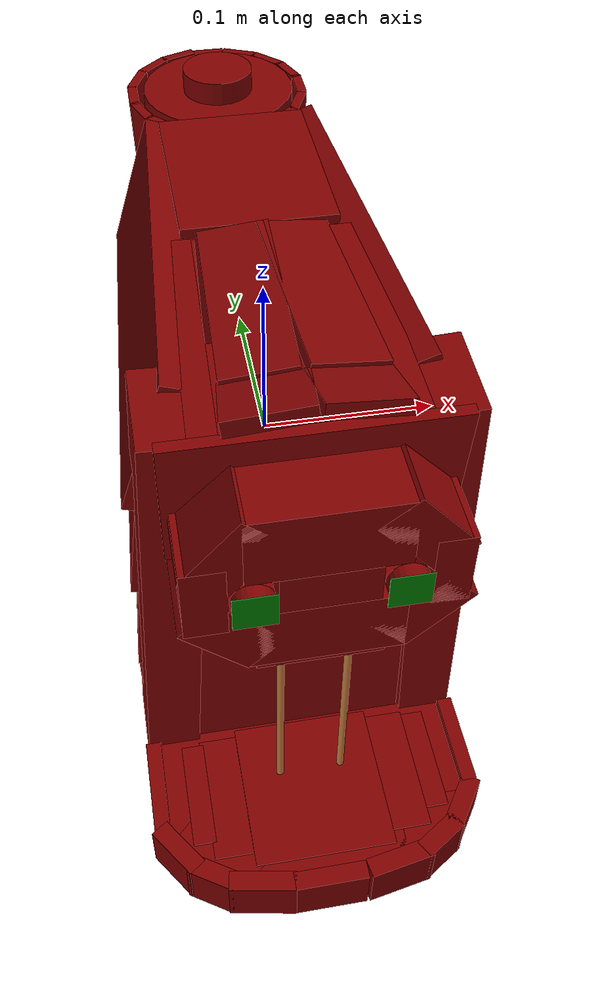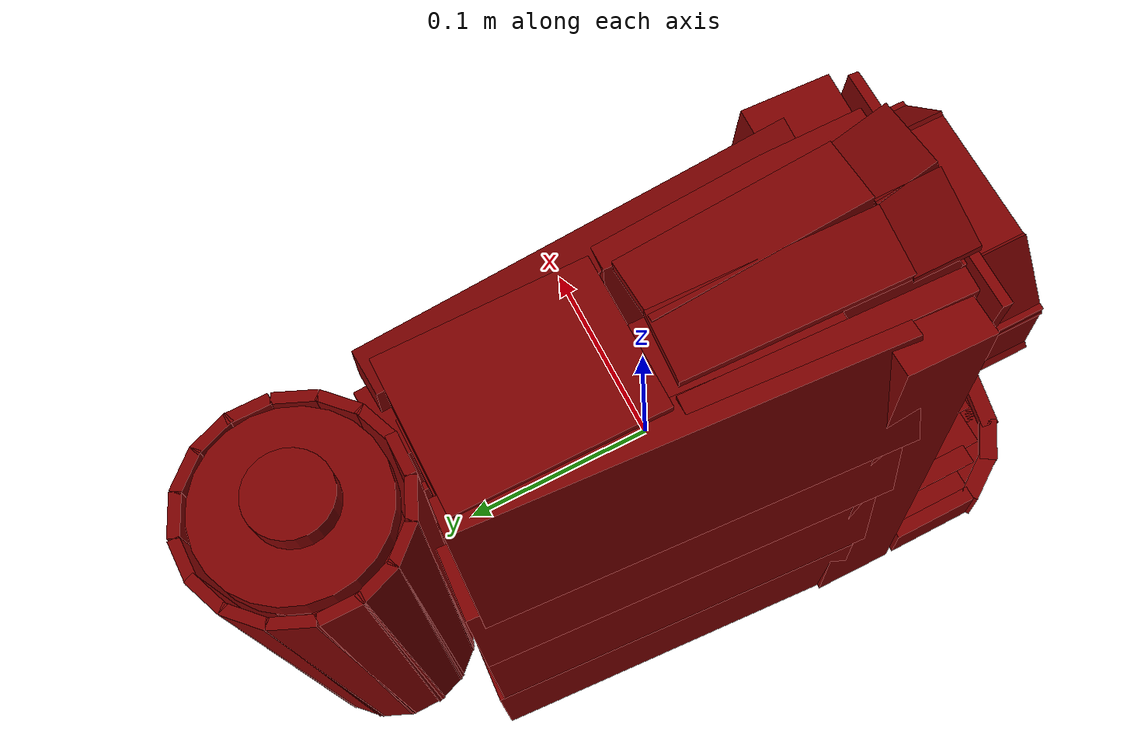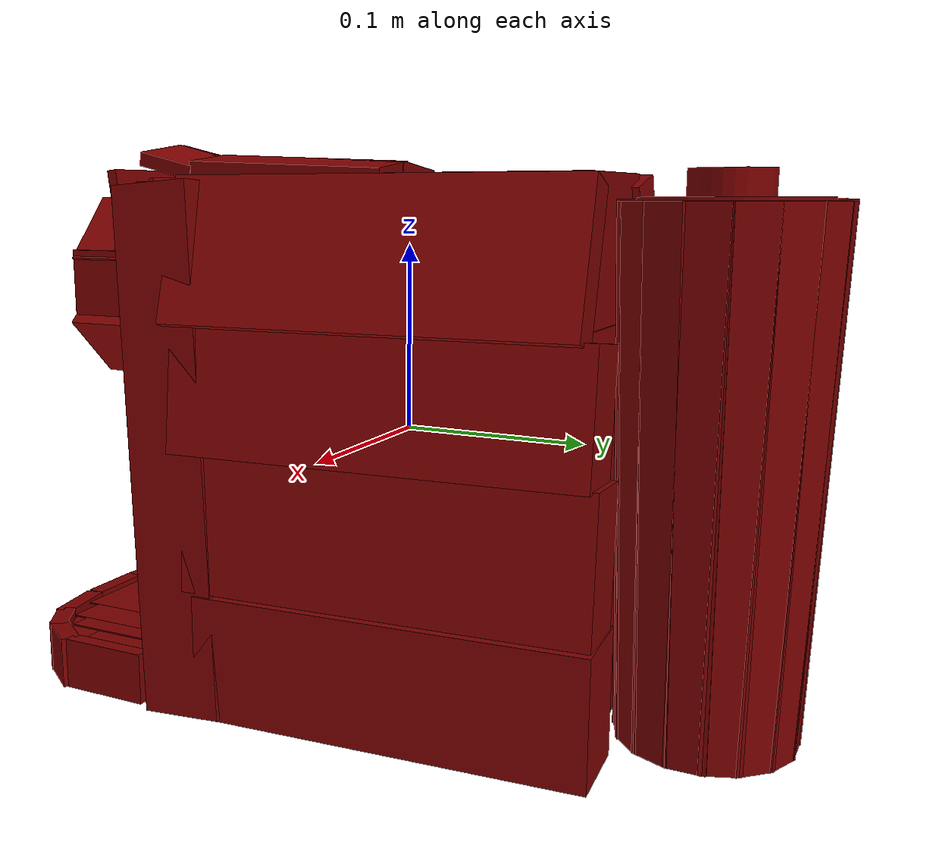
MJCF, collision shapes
<?xml version='1.0' encoding='UTF-8'?>
<mujoco model="model">
  <compiler angle="radian"/>
  <asset>
    <mesh file="visuals/Body001.obj" name="Body001_vis"/>
    <mesh file="visuals/Button001.obj" name="Button001_vis"/>
    <mesh file="visuals/Button002.obj" name="Button002_vis"/>
    <mesh file="visuals/Container001_Clear.obj" name="Container001_Clear_vis"/>
    <mesh file="visuals/Lid001.obj" name="Lid001_vis"/>
    <mesh file="visuals/Lid002.obj" name="Lid002_vis"/>
    <mesh file="visuals/Lid003.obj" name="Lid003_vis"/>
    <texture file="visuals/T_BC001.png" name="Body001_material" type="2d"/>
    <material name="Body001_material" rgba="1 1 1 1.0" texture="Body001_material" shininess="1" specular="1"/>
    <texture file="visuals/T_BC001.png" name="Button001_material" type="2d"/>
    <material name="Button001_material" rgba="1 1 1 1.0" texture="Button001_material" shininess="1" specular="1"/>
    <texture file="visuals/T_BC001.png" name="Button002_material" type="2d"/>
    <material name="Button002_material" rgba="1 1 1 1.0" texture="Button002_material" shininess="1" specular="1"/>
    <texture file="visuals/T_BC001.png" name="Container001_Clear_material" type="2d"/>
    <material name="Container001_Clear_material" rgba="1 1 1 0.30000001192092896" texture="Container001_Clear_material" shininess="0.4472135901451111" specular="0.3103448502657381"/>
    <texture file="visuals/T_BC001.png" name="Lid002_material" type="2d"/>
    <material name="Lid002_material" rgba="1 1 1 1.0" texture="Lid002_material" shininess="1" specular="1"/>
    <texture file="visuals/T_BC001.png" name="Lid001_material" type="2d"/>
    <material name="Lid001_material" rgba="1 1 1 1.0" texture="Lid001_material" shininess="1" specular="1"/>
    <texture file="visuals/T_BC001.png" name="Lid003_material" type="2d"/>
    <material name="Lid003_material" rgba="1 1 1 1.0" texture="Lid003_material" shininess="1" specular="1"/>
  </asset>
  <default>
    <default class="visual">
      <geom conaffinity="0" contype="0" group="1" type="mesh"/>
    </default>
    <default class="collision">
      <geom group="0" rgba="0.5 0 0 0.5"/>
    </default>
    <default class="spawn">
      <geom group="0" rgba="1 1 1 0.5" contype="0" conaffinity="0"/>
      <site group="0" rgba="1 1 1 0.5"/>
    </default>
    <default class="region">
      <geom group="1" conaffinity="0" contype="0" rgba="0 1 0 0"/>
    </default>
  </default>
  <worldbody>
    <body>
      <body name="object">
        <geom class="collision" type="box" pos="-0.033789779990911484 -0.1840297132730484 0.07398782670497894" size="0.009975358843803406 0.0001526409323560074 0.01012924499809742" quat="1.0 0.0 0.0 0.0" name="start_button_1" rgba="0.0 0.5 0 0.5"/>
        <geom class="collision" type="box" pos="0.03348517790436745 -0.1839623898267746 0.07391125708818436" size="0.009867209009826183 0.00015098604490049183 0.010019425302743912" quat="1.0 0.0 0.0 0.0" name="start_button_2" rgba="0.0 0.5 0 0.5"/>
        <site type="cylinder" rgba="0.8 0.5 0.25 1" size="0.001991123892366886 0.07409240305423737" pos="0.016826821491122246 -0.15180371701717377 -0.06749288737773895" name="coffee_liquid_right"/>
        <site rgba="0 0 0 0" size="0.009999999776482582 0.009999999776482582" pos="-0.0003157053142786026 -0.15180371701717377 -0.1255117505788803" name="receptacle_place_site"/>
        <site type="cylinder" rgba="0.8 0.5 0.25 1" size="0.001991123892366886 0.07409240305423737" pos="-0.01745823211967945 -0.15180371701717377 -0.06749288737773895" name="coffee_liquid_left"/>
        <geom mesh="Body001_vis" type="mesh" solimp="0.998 0.998 0.001" solref="0.001 1" density="100" friction="0.95 0.3 0.1" class="visual" material="Body001_material"/>
        <geom class="collision" type="box" pos="0.05843455344438553 0.020633870735764503 -0.11852828413248062" size="0.02300264872610569 0.10832887142896652 0.03451972454786301" quat="0.9994991421699524 0.0 0.0 0.03164573386311531"/>
        <geom class="collision" type="box" pos="0.057073332369327545 0.016555333510041237 -0.04636196419596672" size="0.019947463646531105 0.111720509827137 0.03797116130590439" quat="0.9987374544143677 0.0012352217454463243 -0.03901321068406105 0.031621746718883514"/>
        <geom class="collision" type="box" pos="0.055161505937576294 0.011243190616369247 0.023980574682354927" size="0.019947461783885956 0.11371100693941116 0.03451972082257271" quat="0.9977023601531982 0.0018966753268614411 -0.059904079884290695 0.03158910199999809"/>
        <geom class="collision" type="box" pos="0.056002210825681686 0.005776189733296633 0.09510742872953415" size="0.01093154028058052 0.11207497864961624 0.039635106921195984" quat="0.9882287383079529 0.004738956689834595 -0.14967460930347443 0.03128902241587639"/>
        <geom class="collision" type="box" pos="0.06803900748491287 -0.10458119213581085 -0.01115577481687069" size="0.014560054056346416 0.023803330957889557 0.14346478879451752" quat="0.999038577079773 0.03541722521185875 -0.02582021988928318 -0.0009153560386039317"/>
        <geom class="collision" type="box" pos="-0.06803900748491287 -0.10458119213581085 -0.011155773885548115" size="0.014560054056346416 0.023803334683179855 0.14346478879451752" quat="0.999038577079773 0.03541722521185875 0.02582021988928318 0.0009153562714345753"/>
        <geom class="collision" type="box" pos="-0.055940911173820496 0.005772309843450785 0.09508839249610901" size="0.010995840653777122 0.11207497864961624 0.039635103195905685" quat="0.9882287383079529 0.004738957155495882 0.14967460930347443 -0.03128902614116669"/>
        <geom class="collision" type="box" pos="-0.055572155863046646 0.011269217357039452 0.024030165746808052" size="0.019947461783885956 0.11371100693941116 0.03451972082257271" quat="0.9977023601531982 0.0018966745119541883 0.0599040612578392 -0.03158910572528839"/>
        <geom class="collision" type="box" pos="-0.05875157192349434 0.01531126257032156 -0.04623708128929138" size="0.019947463646531105 0.11037278175354004 0.03830539062619209" quat="0.9987374544143677 0.0012352208141237497 0.039013203233480453 -0.031621742993593216"/>
        <geom class="collision" type="box" pos="-0.058452058583498 0.020357763394713402 -0.11852828413248062" size="0.02300264872610569 0.10805220901966095 0.03451972454786301" quat="0.9994991421699524 0.0 -0.0 -0.03164574131369591"/>
        <geom class="collision" type="box" pos="0.0 -0.09804873913526535 -0.04738736152648926" size="0.06221529096364975 0.02399972639977932 0.10559824109077454" quat="0.9987459778785706 0.05006491765379906 0.0 0.0"/>
        <geom class="collision" type="box" pos="0.0 0.05902857705950737 0.09741136431694031" size="0.040640536695718765 0.053293950855731964 0.03922520577907562" quat="1.0 0.0 0.0 0.0"/>
        <geom class="collision" type="box" pos="0.0 0.0007351087406277657 -0.04555068165063858" size="0.040640536695718765 0.11266183853149414 0.10752008110284805" quat="1.0 0.0 0.0 0.0"/>
        <geom class="collision" type="box" pos="-0.04497283324599266 -0.06946190446615219 0.09808744490146637" size="0.0065611302852630615 0.07181483507156372 0.03517482057213783" quat="0.999821126461029 0.0 -0.0 -0.01891358010470867"/>
        <geom class="collision" type="box" pos="0.04184922203421593 -0.06958012282848358 0.09808744490146637" size="0.009272493422031403 0.07201159745454788 0.03517482057213783" quat="1.0 0.0 0.0 0.0"/>
        <geom class="collision" type="box" pos="-0.001039988244883716 -0.15859147906303406 0.10414855927228928" size="0.03657513111829758 0.01956840790808201 0.01909002661705017" quat="1.0 0.0 0.0 0.0"/>
        <geom class="collision" type="box" pos="-0.001039988244883716 -0.1541668027639389 0.044082362204790115" size="0.03657513111829758 0.023993084207177162 0.01855398342013359" quat="1.0 0.0 0.0 0.0"/>
        <geom class="collision" type="box" pos="0.05377942696213722 -0.15859147906303406 0.07522302865982056" size="0.008984473533928394 0.01956840790808201 0.02083216793835163" quat="1.0 0.0 0.0 0.0"/>
        <geom class="collision" type="box" pos="-0.05462463200092316 -0.15859147906303406 0.07522302865982056" size="0.009992361068725586 0.01956840790808201 0.02083216793835163" quat="1.0 0.0 0.0 0.0"/>
        <geom class="collision" type="box" pos="-0.04218529164791107 -0.15859147906303406 0.10034478455781937" size="0.012115074321627617 0.01956840790808201 0.021567746996879578" quat="0.9396926164627075 0.0 0.3420201539993286 0.0"/>
        <geom class="collision" type="box" pos="0.040822286158800125 -0.15859147906303406 0.10055547952651978" size="0.011787294410169125 0.01956840790808201 0.021567746996879578" quat="0.9396926164627075 0.0 -0.3420201539993286 0.0"/>
        <geom class="collision" type="box" pos="-0.04292824864387512 -0.1541668027639389 0.04927394539117813" size="0.012798948213458061 0.023993084207177162 0.02156774513423443" quat="0.9238795042037964 0.0 -0.3826834559440613 0.0"/>
        <geom class="collision" type="box" pos="0.04268103465437889 -0.1541668027639389 0.04977504163980484" size="0.012752918526530266 0.023993084207177162 0.02156774513423443" quat="0.9238795042037964 0.0 0.3826834559440613 0.0"/>
        <geom class="collision" type="box" pos="-0.0004623840795829892 -0.15163926780223846 0.015381270088255405" size="0.030847812071442604 0.014439957216382027 0.010147105902433395" quat="1.0 0.0 0.0 0.0"/>
        <geom class="collision" type="box" pos="-0.001039988244883716 -0.14049771428108215 0.09966664016246796" size="0.06696514040231705 0.002789622638374567 0.03962075710296631" quat="0.9980223774909973 0.06285938620567322 0.0 0.0"/>
        <geom class="collision" type="box" pos="-0.001039988244883716 -0.12497343122959137 0.09706462174654007" size="0.04009480029344559 0.0027896228712052107 0.041176553815603256" quat="0.9765259027481079 0.21539998054504395 0.0 0.0"/>
        <geom class="collision" type="box" pos="-0.001039988244883716 -0.2150518298149109 -0.13752520084381104" size="0.019673461094498634 0.004876092541962862 0.014557481743395329" quat="1.0 0.0 0.0 0.0"/>
        <geom class="collision" type="box" pos="0.08615154027938843 -0.14814434945583344 -0.13752520084381104" size="0.00421953434124589 0.026311196386814117 0.014557481743395329" quat="1.0 0.0 0.0 0.0"/>
        <geom class="collision" type="box" pos="0.03710896521806717 -0.21179313957691193 -0.13752520084381104" size="0.017926936969161034 0.005231990944594145 0.014557483606040478" quat="0.9961947202682495 0.0 0.0 0.08715573698282242"/>
        <geom class="collision" type="box" pos="0.06204337254166603 -0.20279547572135925 -0.13752520084381104" size="0.013208909891545773 0.005231991410255432 0.014557483606040478" quat="0.9612616896629333 0.0 0.0 0.27563735842704773"/>
        <geom class="collision" type="box" pos="0.07885299623012543 -0.1860150843858719 -0.13752520084381104" size="0.015535338781774044 0.005231991410255432 0.01455747988075018" quat="0.8870107531547546 0.0 0.0 0.46174874901771545"/>
        <geom class="collision" type="box" pos="-0.07885301113128662 -0.1860150545835495 -0.13752520084381104" size="0.015535340644419193 0.005231995601207018 0.014557483606040478" quat="0.8870107531547546 0.0 -0.0 -0.46174874901771545"/>
        <geom class="collision" type="box" pos="-0.06204337999224663 -0.20279547572135925 -0.13752520084381104" size="0.013208911754190922 0.005231995601207018 0.014557483606040478" quat="0.9612616896629333 0.0 -0.0 -0.27563735842704773"/>
        <geom class="collision" type="box" pos="-0.03710898011922836 -0.21179313957691193 -0.13752520084381104" size="0.017926936969161034 0.005231995601207018 0.014557483606040478" quat="0.9961947202682495 0.0 -0.0 -0.08715575188398361"/>
        <geom class="collision" type="box" pos="-0.08615154772996902 -0.14814434945583344 -0.13752520084381104" size="0.00421953434124589 0.026311200112104416 0.014557483606040478" quat="1.0 0.0 0.0 0.0"/>
        <geom class="collision" type="box" pos="-0.001039988244883716 -0.19328707456588745 -0.14053919911384583" size="0.04468565434217453 0.016660097986459732 0.011543487198650837" quat="1.0 0.0 0.0 0.0"/>
        <geom class="collision" type="box" pos="0.00034792337100952864 -0.14682042598724365 -0.14053919911384583" size="0.08250667154788971 0.02994546853005886 0.011543487198650837" quat="1.0 0.0 0.0 0.0"/>
        <geom class="collision" type="box" pos="0.05526924878358841 -0.18467195332050323 -0.14053919911384583" size="0.023893576115369797 0.014690425246953964 0.011543487198650837" quat="0.9238795042037964 0.0 0.0 0.3826834559440613"/>
        <geom class="collision" type="box" pos="-0.05478034168481827 -0.18739482760429382 -0.14053919911384583" size="0.023893576115369797 0.014690425246953964 0.011543487198650837" quat="0.9238795042037964 0.0 -0.0 -0.3826834559440613"/>
        <geom class="collision" type="cylinder" pos="0.01691923290491104 -0.15179666876792908 0.001019718823954463" size="0.008306972682476044 0.0042175608687102795" quat="1.0 0.0 0.0 0.0"/>
        <geom class="collision" type="cylinder" pos="0.0 0.16888763010501862 -0.1333457976579666" size="0.03554733470082283 0.01612493209540844" quat="1.0 0.0 0.0 0.0"/>
        <geom class="collision" type="cylinder" pos="-0.017341062426567078 -0.15179666876792908 0.001019718823954463" size="0.008306972682476044 0.0042175608687102795" quat="1.0 0.0 0.0 0.0"/>
        <geom class="collision" type="box" pos="0.00011250283569097519 -0.15859147906303406 0.07386213541030884" size="0.02277202531695366 0.01956840790808201 0.011049384251236916" quat="1.0 0.0 0.0 0.0"/>
        <body name="Button001">
          <joint axis="0.0 1.0 0.0" pos="-0.033782634884119034 -0.17874042689800262 0.07396551966667175" limited="true" name="Button001_joint" range="0.0 0.003" type="slide" damping="1" frictionloss="1" armature=".01" stiffness="0.05"/>
          <geom mesh="Button001_vis" type="mesh" solimp="0.998 0.998 0.001" solref="0.001 1" density="100" friction="0.95 0.3 0.1" class="visual" material="Button001_material"/>
          <geom class="collision" type="cylinder" pos="-0.033789779990911484 -0.18040353059768677 0.07398782670497894" size="0.009975358843803406 0.0032741986215114594" quat="0.7071067094802856 0.7071068286895752 0.0 0.0"/>
        </body>
        <body name="Button002">
          <joint axis="0.0 1.0 0.0" pos="0.0335460789501667 -0.17876867949962616 0.0738954171538353" limited="true" name="Button002_joint" range="0.0 0.003" type="slide" damping="1" frictionloss="1" armature=".01" stiffness="0.05"/>
          <geom mesh="Button002_vis" type="mesh" solimp="0.998 0.998 0.001" solref="0.001 1" density="100" friction="0.95 0.3 0.1" class="visual" material="Button002_material"/>
          <geom class="collision" type="cylinder" pos="0.03353021666407585 -0.18046434223651886 0.07391125708818436" size="0.009867203421890736 0.00326239294372499" quat="0.7071067094802856 0.7071068286895752 0.0 0.0"/>
        </body>
        <body name="Container001_Clear">
          <joint axis="0.0 0.0 1.0" pos="0.0003075712302234024 0.1690853089094162 -0.046253517270088196" limited="true" name="Container001_Clear_joint" range="0.0 0.08" type="slide" damping="1" frictionloss="1" armature=".01" stiffness="0.05"/>
          <geom mesh="Container001_Clear_vis" type="mesh" solimp="0.998 0.998 0.001" solref="0.001 1" density="100" friction="0.95 0.3 0.1" class="visual" material="Container001_Clear_material"/>
          <geom class="collision" type="box" pos="-0.0004623840795829892 0.2153720259666443 -0.0109131233766675" size="0.010516506619751453 0.002814082195982337 0.13401581346988678" quat="0.9998857975006104 -0.015110925771296024 -0.0 0.0"/>
          <geom class="collision" type="box" pos="-0.0004623840795829892 0.12225232273340225 -0.009994575753808022" size="0.010516506619751453 0.002814082195982337 0.13401581346988678" quat="7.548928238065855e-08 -1.1408435307558307e-09 0.015110925771296024 -0.9998857975006104"/>
          <geom class="collision" type="box" pos="-0.04702223464846611 0.16881217062473297 -0.009994575753808022" size="0.010516506619751453 0.002814082195982337 0.13401581346988678" quat="0.7070260047912598 -0.010684972628951073 -0.010684972628951073 0.7070261240005493"/>
          <geom class="collision" type="box" pos="0.04609747603535652 0.16881217062473297 -0.0109131233766675" size="0.010516506619751453 0.002814082195982337 0.13401581346988678" quat="0.7070260047912598 -0.010684974491596222 0.010684974491596222 -0.7070261240005493"/>
          <geom class="collision" type="box" pos="0.016400909051299095 0.1254134476184845 -0.0109131233766675" size="0.010516506619751453 0.002814082195982337 0.13401581346988678" quat="0.18422594666481018 -0.0027841245755553246 0.014852131716907024 -0.9827677607536316"/>
          <geom class="collision" type="box" pos="-0.017325667664408684 0.21221089363098145 -0.009994575753808022" size="0.010516506619751453 0.002814082195982337 0.13401581346988678" quat="0.9827678203582764 -0.014852132648229599 -0.002784118754789233 0.18422554433345795"/>
          <geom class="collision" type="box" pos="-0.04386110603809357 0.15194888412952423 -0.009994575753808022" size="0.010516506619751453 0.002814082195982337 0.13401581346988678" quat="0.5646544098854065 -0.00853336974978447 -0.012470713816583157 0.8251891136169434"/>
          <geom class="collision" type="box" pos="0.04293634742498398 0.1856754720211029 -0.0109131233766675" size="0.010516506619751453 0.002814082195982337 0.13401581346988678" quat="0.8251891136169434 -0.012470713816583157 0.00853336974978447 -0.5646544098854065"/>
          <geom class="collision" type="box" pos="0.033372554928064346 0.20079682767391205 -0.0109131233766675" size="0.010516506619751453 0.002814082195982337 0.13401581346988678" quat="0.9183061718940735 -0.013877948746085167 0.005978259723633528 -0.3955824077129364"/>
          <geom class="collision" type="box" pos="-0.034297313541173935 0.1368275284767151 -0.009994575753808022" size="0.010516506619751453 0.002814082195982337 0.13401581346988678" quat="0.3955828845500946 -0.005978265777230263 -0.013877944089472294 0.9183059930801392"/>
          <geom class="collision" type="box" pos="-0.03244701772928238 0.2026471048593521 -0.009994575753808022" size="0.010516506619751453 0.002814082195982337 0.13401581346988678" quat="0.9290596842765808 -0.014040469191968441 -0.00558592239394784 0.3696211576461792"/>
          <geom class="collision" type="box" pos="0.03152225539088249 0.13497723639011383 -0.0109131233766675" size="0.010516506619751453 0.002814082195982337 0.13401581346988678" quat="0.36962124705314636 -0.005585921462625265 0.014040464535355568 -0.929059624671936"/>
          <geom class="collision" type="box" pos="0.04217557981610298 0.15010856091976166 -0.0109131233766675" size="0.010516506619751453 0.002814082195982337 0.13401581346988678" quat="0.5468785166740417 -0.008264729753136635 0.01265034731477499 -0.8370755910873413"/>
          <geom class="collision" type="box" pos="-0.04310033097863197 0.18751578032970428 -0.009994575753808022" size="0.010516506619751453 0.002814082195982337 0.13401581346988678" quat="0.8370756506919861 -0.012650350108742714 -0.00826472882181406 0.5468783974647522"/>
          <geom class="collision" type="box" pos="-0.01916598342359066 0.1261742264032364 -0.009994575753808022" size="0.010516506619751453 0.002814082195982337 0.13401581346988678" quat="0.20520029962062836 -0.0031011004466563463 -0.01478919479995966 0.9786033630371094"/>
          <geom class="collision" type="box" pos="0.01824122481048107 0.21145014464855194 -0.0109131233766675" size="0.010516506619751453 0.002814082195982337 0.13401581346988678" quat="0.9786033630371094 -0.01478919293731451 0.003101099282503128 -0.20520025491714478"/>
          <geom class="collision" type="cylinder" pos="0.000307571142911911 0.1690853089094162 -0.0973147600889206" size="0.03925098851323128 0.0062439944595098495" quat="1.0 0.0 0.0 0.0"/>
          <body name="Lid002">
            <joint axis="0.0 0.0 1.0" pos="0.00030757038621231914 0.1690853238105774 0.12460649758577347" limited="true" name="Lid002_joint" range="0.0 0.1" type="slide" damping="1" frictionloss="1" armature=".01" stiffness="0.05"/>
            <geom mesh="Lid002_vis" type="mesh" solimp="0.998 0.998 0.001" solref="0.001 1" density="100" friction="0.95 0.3 0.1" class="visual" material="Lid002_material"/>
            <geom class="collision" type="cylinder" pos="0.000307571142911911 0.1690853089094162 0.11756789684295654" size="0.04501838982105255 0.0071614645421504974" quat="1.0 0.0 0.0 0.0"/>
            <geom class="collision" type="cylinder" pos="0.0 0.16728100180625916 0.13017986714839935" size="0.020584462210536003 0.007787729147821665" quat="1.0 0.0 0.0 0.0"/>
          </body>
        </body>
        <body name="Lid001">
          <joint axis="-1.0 0.0 0.0" pos="-0.0015179887413978577 0.0016732364892959595 0.13792306184768677" limited="true" name="Lid001_joint" range="0.0 1.5707963267948966" type="hinge" damping="1" frictionloss="1" armature=".01" stiffness="0.05"/>
          <geom mesh="Lid001_vis" type="mesh" solimp="0.998 0.998 0.001" solref="0.001 1" density="100" friction="0.95 0.3 0.1" class="visual" material="Lid001_material"/>
          <geom class="collision" type="box" pos="0.016242368146777153 -0.05958281457424164 0.1401137411594391" size="0.01802298240363598 0.057333528995513916 0.0038312412798404694" quat="0.9977044463157654 -0.022706765681505203 0.060022033751010895 0.021624915301799774"/>
          <geom class="collision" type="box" pos="0.018743501976132393 -0.13254307210445404 0.14440782368183136" size="0.019693808630108833 0.0162035059183836 0.0038312412798404694" quat="0.9891969561576843 -0.1264004111289978 0.06361585855484009 0.03827952593564987"/>
          <geom class="collision" type="box" pos="-0.01732642948627472 -0.059220876544713974 0.1399664282798767" size="0.017864152789115906 0.057646963745355606 0.003831243608146906" quat="0.9977281093597412 -0.022774098441004753 -0.059996530413627625 -0.0205038134008646"/>
          <geom class="collision" type="box" pos="-0.019673379138112068 -0.13252893090248108 0.14431001245975494" size="0.02018287405371666 0.01625124178826809 0.003848985070362687" quat="0.9891969561576843 -0.1264003962278366 -0.06361585855484009 -0.03827952221035957"/>
        </body>
        <body name="Lid003">
          <joint axis="0.0 0.0 1.0" pos="-9.237555786967278e-08 -0.16420869529247284 -0.12303192913532257" limited="true" name="Lid003_joint" range="0.0 0.05" type="slide" damping="1" frictionloss="1" armature=".01" stiffness="0.05" springref="-20"/>
          <geom mesh="Lid003_vis" type="mesh" solimp="0.998 0.998 0.001" solref="0.001 1" density="100" friction="0.95 0.3 0.1" class="visual" material="Lid003_material"/>
          <geom class="collision" type="box" pos="-0.001039988244883716 -0.16279461979866028 -0.12317441403865814" size="0.03817063570022583 0.04083503410220146 0.00036990229273214936" quat="1.0 0.0 0.0 0.0"/>
          <geom class="collision" type="box" pos="0.04766416177153587 -0.1612086147069931 -0.12317441403865814" size="0.010533514432609081 0.035080842673778534 0.00036990156513638794" quat="1.0 0.0 0.0 0.0"/>
          <geom class="collision" type="box" pos="0.06436283886432648 -0.15736523270606995 -0.12317441403865814" size="0.006165160797536373 0.029379118233919144 0.00036990080843679607" quat="1.0 0.0 0.0 0.0"/>
          <geom class="collision" type="box" pos="-0.06438075751066208 -0.15736523270606995 -0.12317441403865814" size="0.006165160797536373 0.029379118233919144 0.00036990008084103465" quat="1.0 0.0 0.0 0.0"/>
          <geom class="collision" type="box" pos="-0.04986061528325081 -0.1612086147069931 -0.12317441403865814" size="0.010533514432609081 0.035080842673778534 0.0003698993241414428" quat="1.0 0.0 0.0 0.0"/>
        </body>
        <geom class="region" name="reg_main" type="box" pos="-1.862645149230957e-09 0.0 0.0" size="0.0905999019742012 0.21999847888946533 0.1524038016796112"/>
      </body>
    </body>
  </worldbody>
  <actuator>
    <motor name="Button001_joint_actuator" joint="Button001_joint" gear="0.5"/>
    <motor name="Button002_joint_actuator" joint="Button002_joint" gear="0.5"/>
    <motor name="Container001_Clear_joint_actuator" joint="Container001_Clear_joint" gear="10"/>
    <motor name="Lid001_joint_actuator" joint="Lid001_joint" gear="10"/>
    <motor name="Lid003_joint_actuator" joint="Lid003_joint" gear="10"/>
    <motor name="Lid002_joint_actuator" joint="Lid002_joint" gear="10"/>
  </actuator>
</mujoco>
